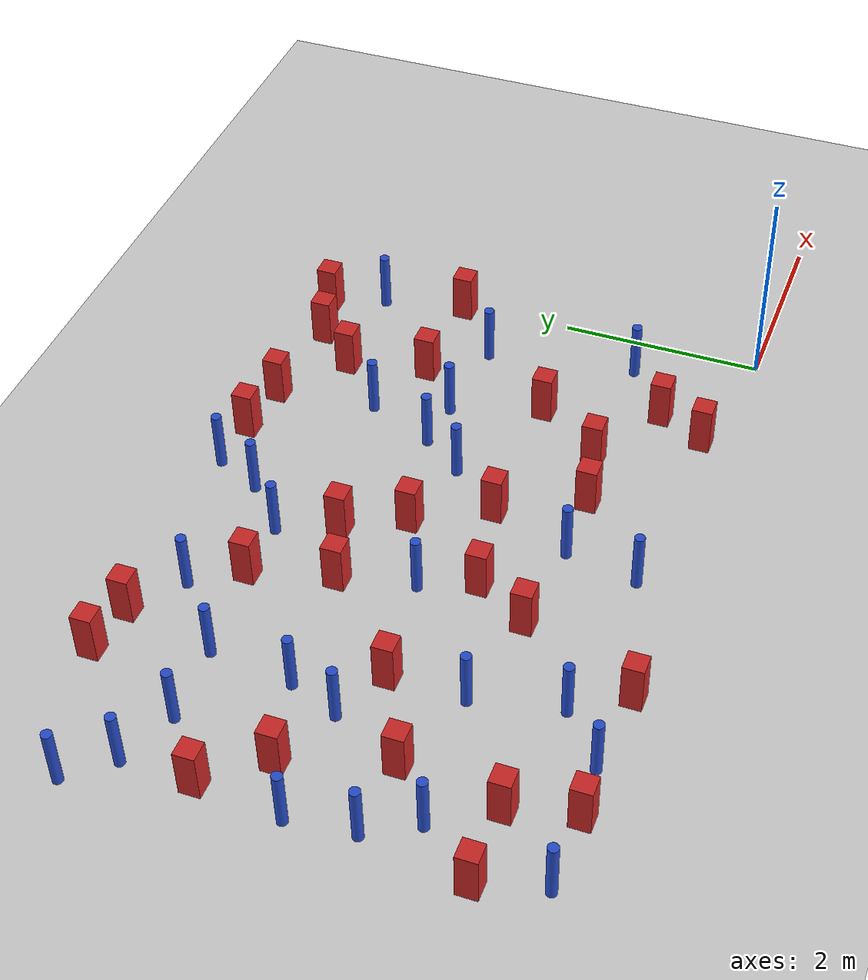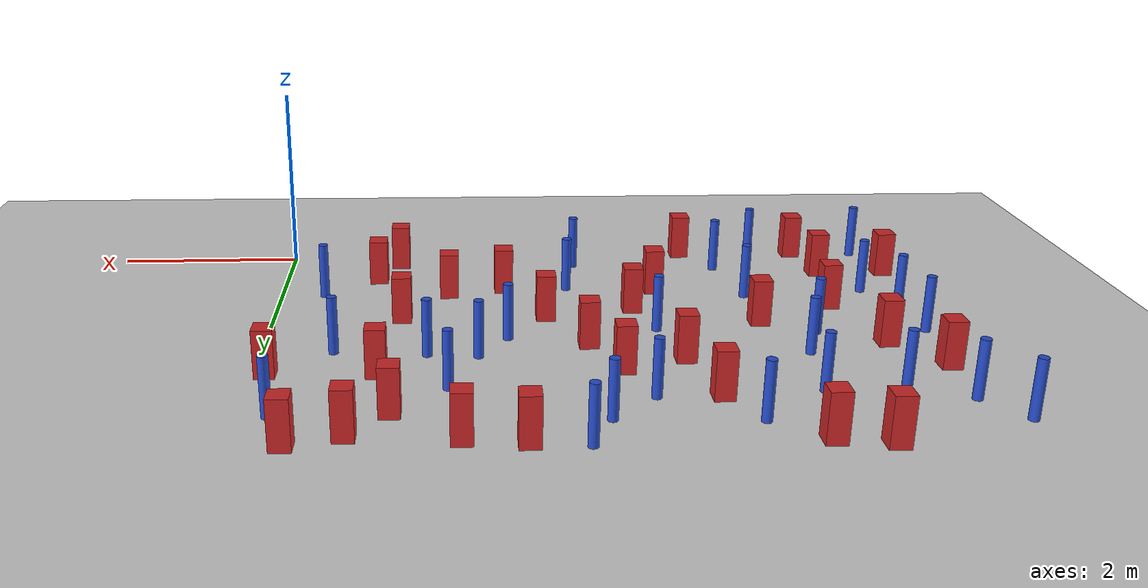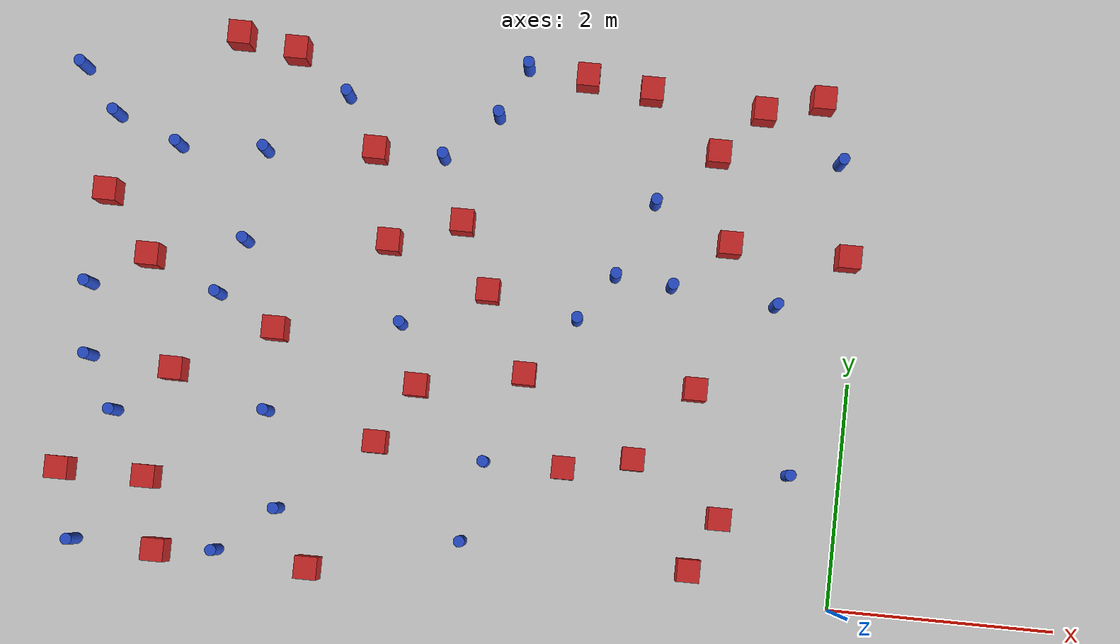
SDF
<sdf version="1.6">
 <world name="default">
  <model name="ground_plane">
   <static>1</static>
   <link name="link">
    <collision name="collision">
     <geometry><plane><normal>0 0 1</normal><size>100 100</size></plane></geometry>
     <surface><friction><ode><mu>100</mu><mu2>50</mu2></ode></friction></surface>
    </collision>
    <visual name="visual">
     <cast_shadows>0</cast_shadows>
     <geometry><plane><normal>0 0 1</normal><size>100 100</size></plane></geometry>
     <material>
      <ambient>1.0 1.0 1.0 1.0</ambient>
      <diffuse>0.8 0.8 0.8 1.0</diffuse>
      <specular>0.01 0.01 0.01 1.000000</specular>
     </material>
    </visual>
   </link>
  </model>
  <model name="square_post_obstacle5">
   <static>true</static>
   <pose>-6.06662300361 0.604514829962 -6.11067671241e-07 -5.50515727128e-06 -8.79689657224e-07 2.37013304536e-05</pose>
   <link name="link">
    <pose>0 0 0.25 0 -0 0</pose>
    <inertial>
     <mass>100</mass>
     <inertia>
      <ixx>0.166667</ixx>
      <ixy>0</ixy>
      <ixz>0</ixz>
      <iyy>0.166667</iyy>
      <iyz>0</iyz>
      <izz>0.166667</izz>
     </inertia>
    </inertial>
    <collision name="collision"><geometry><box><size>.2 .2 .5</size></box></geometry></collision>
    <visual name="visual">
     <geometry><box><size>.2 .2 .5</size></box></geometry>
     <material>
      <script><name>Gazebo/Red</name><uri>file://media/materials/scripts/gazebo.material</uri></script>
     </material>
    </visual>
   </link>
  </model>
  <model name="square_post_obstacle10">
   <static>true</static>
   <pose>-1.35094826481 1.81705522955 -6.11067671241e-07 -5.50515727128e-06 -8.79689657224e-07 2.37013304536e-05</pose>
   <link name="link">
    <pose>0 0 0.25 0 -0 0</pose>
    <inertial>
     <mass>100</mass>
     <inertia>
      <ixx>0.166667</ixx>
      <ixy>0</ixy>
      <ixz>0</ixz>
      <iyy>0.166667</iyy>
      <iyz>0</iyz>
      <izz>0.166667</izz>
     </inertia>
    </inertial>
    <collision name="collision"><geometry><box><size>.2 .2 .5</size></box></geometry></collision>
    <visual name="visual">
     <geometry><box><size>.2 .2 .5</size></box></geometry>
     <material>
      <script><name>Gazebo/Red</name><uri>file://media/materials/scripts/gazebo.material</uri></script>
     </material>
    </visual>
   </link>
  </model>
  <model name="square_post_obstacle20">
   <static>true</static>
   <pose>-0.461503948646 4.46319165194 -6.11067671241e-07 -5.50515727128e-06 -8.79689657224e-07 2.37013304536e-05</pose>
   <link name="link">
    <pose>0 0 0.25 0 -0 0</pose>
    <inertial>
     <mass>100</mass>
     <inertia>
      <ixx>0.166667</ixx>
      <ixy>0</ixy>
      <ixz>0</ixz>
      <iyy>0.166667</iyy>
      <iyz>0</iyz>
      <izz>0.166667</izz>
     </inertia>
    </inertial>
    <collision name="collision"><geometry><box><size>.2 .2 .5</size></box></geometry></collision>
    <visual name="visual">
     <geometry><box><size>.2 .2 .5</size></box></geometry>
     <material>
      <script><name>Gazebo/Red</name><uri>file://media/materials/scripts/gazebo.material</uri></script>
     </material>
    </visual>
   </link>
  </model>
  <model name="pole_obstacle14">
   <static>true</static>
   <pose>-6.65440008186 0.000161308376576 -9.47619616065e-06 5.49618799737e-07 2.36310414074e-07 -1.55090534794e-07</pose>
   <link name="link">
    <pose>0 0 0.3 0 -0 0</pose>
    <inertial>
     <mass>1</mass>
     <inertia><ixx>0.145833</ixx><ixy>0</ixy><ixz>0</ixz><iyy>0.145833</iyy><iyz>0</iyz><izz>0.125</izz></inertia>
    </inertial>
    <collision name="collision">
     <geometry><cylinder><radius>0.05</radius><length>.6</length></cylinder></geometry>
    </collision>
    <visual name="visual">
     <geometry><cylinder><radius>0.05</radius><length>.6</length></cylinder></geometry>
     <material>
      <script><name>Gazebo/Blue</name><uri>file://media/materials/scripts/gazebo.material</uri></script>
     </material>
    </visual>
   </link>
  </model>
  <model name="pole_obstacle15">
   <static>true</static>
   <pose>-3.74380300782 3.64948298879 -9.47619616065e-06 5.49618799737e-07 2.36310414051e-07 -1.55090534807e-07</pose>
   <link name="link">
    <pose>0 0 0.3 0 -0 0</pose>
    <inertial>
     <mass>1</mass>
     <inertia><ixx>0.145833</ixx><ixy>0</ixy><ixz>0</ixz><iyy>0.145833</iyy><iyz>0</iyz><izz>0.125</izz></inertia>
    </inertial>
    <collision name="collision">
     <geometry><cylinder><radius>0.05</radius><length>.6</length></cylinder></geometry>
    </collision>
    <visual name="visual">
     <geometry><cylinder><radius>0.05</radius><length>.6</length></cylinder></geometry>
     <material>
      <script><name>Gazebo/Blue</name><uri>file://media/materials/scripts/gazebo.material</uri></script>
     </material>
    </visual>
   </link>
  </model>
  <model name="square_post_obstacle24">
   <static>true</static>
   <pose>-5.92101096447 -0.0235850594535 -6.11067671241e-07 -5.50515727128e-06 -8.79689657224e-07 2.37013304536e-05</pose>
   <link name="link">
    <pose>0 0 0.25 0 -0 0</pose>
    <inertial>
     <mass>100</mass>
     <inertia>
      <ixx>0.166667</ixx>
      <ixy>0</ixy>
      <ixz>0</ixz>
      <iyy>0.166667</iyy>
      <iyz>0</iyz>
      <izz>0.166667</izz>
     </inertia>
    </inertial>
    <collision name="collision"><geometry><box><size>.2 .2 .5</size></box></geometry></collision>
    <visual name="visual">
     <geometry><box><size>.2 .2 .5</size></box></geometry>
     <material>
      <script><name>Gazebo/Red</name><uri>file://media/materials/scripts/gazebo.material</uri></script>
     </material>
    </visual>
   </link>
  </model>
  <model name="square_post_obstacle32">
   <static>true</static>
   <pose>-4.0955352928 1.09603956919 -6.11067671241e-07 -5.50515727128e-06 -8.79689657224e-07 2.37013304536e-05</pose>
   <link name="link">
    <pose>0 0 0.25 0 -0 0</pose>
    <inertial>
     <mass>100</mass>
     <inertia>
      <ixx>0.166667</ixx>
      <ixy>0</ixy>
      <ixz>0</ixz>
      <iyy>0.166667</iyy>
      <iyz>0</iyz>
      <izz>0.166667</izz>
     </inertia>
    </inertial>
    <collision name="collision"><geometry><box><size>.2 .2 .5</size></box></geometry></collision>
    <visual name="visual">
     <geometry><box><size>.2 .2 .5</size></box></geometry>
     <material>
      <script><name>Gazebo/Red</name><uri>file://media/materials/scripts/gazebo.material</uri></script>
     </material>
    </visual>
   </link>
  </model>
  <model name="pole_obstacle40">
   <static>true</static>
   <pose>-6.07600531907 3.53764182708 -9.47619616065e-06 5.49618799738e-07 2.36310414051e-07 -1.55090534805e-07</pose>
   <link name="link">
    <pose>0 0 0.3 0 -0 0</pose>
    <inertial>
     <mass>1</mass>
     <inertia><ixx>0.145833</ixx><ixy>0</ixy><ixz>0</ixz><iyy>0.145833</iyy><iyz>0</iyz><izz>0.125</izz></inertia>
    </inertial>
    <collision name="collision">
     <geometry><cylinder><radius>0.05</radius><length>.6</length></cylinder></geometry>
    </collision>
    <visual name="visual">
     <geometry><cylinder><radius>0.05</radius><length>.6</length></cylinder></geometry>
     <material>
      <script><name>Gazebo/Blue</name><uri>file://media/materials/scripts/gazebo.material</uri></script>
     </material>
    </visual>
   </link>
  </model>
  <model name="square_post_obstacle46">
   <static>true</static>
   <pose>-2.43889135925 1.02437017474 -6.11067671241e-07 -5.50515727128e-06 -8.79689657224e-07 2.37013304536e-05</pose>
   <link name="link">
    <pose>0 0 0.25 0 -0 0</pose>
    <inertial>
     <mass>100</mass>
     <inertia>
      <ixx>0.166667</ixx>
      <ixy>0</ixy>
      <ixz>0</ixz>
      <iyy>0.166667</iyy>
      <iyz>0</iyz>
      <izz>0.166667</izz>
     </inertia>
    </inertial>
    <collision name="collision"><geometry><box><size>.2 .2 .5</size></box></geometry></collision>
    <visual name="visual">
     <geometry><box><size>.2 .2 .5</size></box></geometry>
     <material>
      <script><name>Gazebo/Red</name><uri>file://media/materials/scripts/gazebo.material</uri></script>
     </material>
    </visual>
   </link>
  </model>
  <model name="pole_obstacle53">
   <static>true</static>
   <pose>-5.40208501766 0.0239567719036 -9.47619616065e-06 5.49618799737e-07 2.36310414077e-07 -1.55090534792e-07</pose>
   <link name="link">
    <pose>0 0 0.3 0 -0 0</pose>
    <inertial>
     <mass>1</mass>
     <inertia><ixx>0.145833</ixx><ixy>0</ixy><ixz>0</ixz><iyy>0.145833</iyy><iyz>0</iyz><izz>0.125</izz></inertia>
    </inertial>
    <collision name="collision">
     <geometry><cylinder><radius>0.05</radius><length>.6</length></cylinder></geometry>
    </collision>
    <visual name="visual">
     <geometry><cylinder><radius>0.05</radius><length>.6</length></cylinder></geometry>
     <material>
      <script><name>Gazebo/Blue</name><uri>file://media/materials/scripts/gazebo.material</uri></script>
     </material>
    </visual>
   </link>
  </model>
  <model name="square_post_obstacle58">
   <static>true</static>
   <pose>-1.16435199331 3.11640823403 -6.11067671241e-07 -5.50515727128e-06 -8.79689657224e-07 2.37013304536e-05</pose>
   <link name="link">
    <pose>0 0 0.25 0 -0 0</pose>
    <inertial>
     <mass>100</mass>
     <inertia>
      <ixx>0.166667</ixx>
      <ixy>0</ixy>
      <ixz>0</ixz>
      <iyy>0.166667</iyy>
      <iyz>0</iyz>
      <izz>0.166667</izz>
     </inertia>
    </inertial>
    <collision name="collision"><geometry><box><size>.2 .2 .5</size></box></geometry></collision>
    <visual name="visual">
     <geometry><box><size>.2 .2 .5</size></box></geometry>
     <material>
      <script><name>Gazebo/Red</name><uri>file://media/materials/scripts/gazebo.material</uri></script>
     </material>
    </visual>
   </link>
  </model>
  <model name="pole_obstacle61">
   <static>true</static>
   <pose>-0.470214494111 1.14553259301 -9.47619616065e-06 5.49618799738e-07 2.36310414059e-07 -1.55090534802e-07</pose>
   <link name="link">
    <pose>0 0 0.3 0 -0 0</pose>
    <inertial>
     <mass>1</mass>
     <inertia><ixx>0.145833</ixx><ixy>0</ixy><ixz>0</ixz><iyy>0.145833</iyy><iyz>0</iyz><izz>0.125</izz></inertia>
    </inertial>
    <collision name="collision">
     <geometry><cylinder><radius>0.05</radius><length>.6</length></cylinder></geometry>
    </collision>
    <visual name="visual">
     <geometry><cylinder><radius>0.05</radius><length>.6</length></cylinder></geometry>
     <material>
      <script><name>Gazebo/Blue</name><uri>file://media/materials/scripts/gazebo.material</uri></script>
     </material>
    </visual>
   </link>
  </model>
  <model name="pole_obstacle62">
   <static>true</static>
   <pose>-5.60081594355 2.26442288096 -9.47619616065e-06 5.49618799738e-07 2.36310414051e-07 -1.55090534805e-07</pose>
   <link name="link">
    <pose>0 0 0.3 0 -0 0</pose>
    <inertial>
     <mass>1</mass>
     <inertia><ixx>0.145833</ixx><ixy>0</ixy><ixz>0</ixz><iyy>0.145833</iyy><iyz>0</iyz><izz>0.125</izz></inertia>
    </inertial>
    <collision name="collision">
     <geometry><cylinder><radius>0.05</radius><length>.6</length></cylinder></geometry>
    </collision>
    <visual name="visual">
     <geometry><cylinder><radius>0.05</radius><length>.6</length></cylinder></geometry>
     <material>
      <script><name>Gazebo/Blue</name><uri>file://media/materials/scripts/gazebo.material</uri></script>
     </material>
    </visual>
   </link>
  </model>
  <model name="pole_obstacle63">
   <static>true</static>
   <pose>-1.63534114323 2.70357847864 -9.47619616065e-06 5.49618799737e-07 2.36310414062e-07 -1.55090534798e-07</pose>
   <link name="link">
    <pose>0 0 0.3 0 -0 0</pose>
    <inertial>
     <mass>1</mass>
     <inertia><ixx>0.145833</ixx><ixy>0</ixy><ixz>0</ixz><iyy>0.145833</iyy><iyz>0</iyz><izz>0.125</izz></inertia>
    </inertial>
    <collision name="collision">
     <geometry><cylinder><radius>0.05</radius><length>.6</length></cylinder></geometry>
    </collision>
    <visual name="visual">
     <geometry><cylinder><radius>0.05</radius><length>.6</length></cylinder></geometry>
     <material>
      <script><name>Gazebo/Blue</name><uri>file://media/materials/scripts/gazebo.material</uri></script>
     </material>
    </visual>
   </link>
  </model>
  <model name="square_post_obstacle67">
   <static>true</static>
   <pose>-2.54320084545 4.46881187604 -6.11067671241e-07 -5.50515727128e-06 -8.79689657224e-07 2.37013304536e-05</pose>
   <link name="link">
    <pose>0 0 0.25 0 -0 0</pose>
    <inertial>
     <mass>100</mass>
     <inertia>
      <ixx>0.166667</ixx>
      <ixy>0</ixy>
      <ixz>0</ixz>
      <iyy>0.166667</iyy>
      <iyz>0</iyz>
      <izz>0.166667</izz>
     </inertia>
    </inertial>
    <collision name="collision"><geometry><box><size>.2 .2 .5</size></box></geometry></collision>
    <visual name="visual">
     <geometry><box><size>.2 .2 .5</size></box></geometry>
     <material>
      <script><name>Gazebo/Red</name><uri>file://media/materials/scripts/gazebo.material</uri></script>
     </material>
    </visual>
   </link>
  </model>
  <model name="square_post_obstacle75">
   <static>true</static>
   <pose>-5.6244048949 4.5495234167 -6.11067671241e-07 -5.50515727128e-06 -8.79689657224e-07 2.37013304536e-05</pose>
   <link name="link">
    <pose>0 0 0.25 0 -0 0</pose>
    <inertial>
     <mass>100</mass>
     <inertia>
      <ixx>0.166667</ixx>
      <ixy>0</ixy>
      <ixz>0</ixz>
      <iyy>0.166667</iyy>
      <iyz>0</iyz>
      <izz>0.166667</izz>
     </inertia>
    </inertial>
    <collision name="collision"><geometry><box><size>.2 .2 .5</size></box></geometry></collision>
    <visual name="visual">
     <geometry><box><size>.2 .2 .5</size></box></geometry>
     <material>
      <script><name>Gazebo/Red</name><uri>file://media/materials/scripts/gazebo.material</uri></script>
     </material>
    </visual>
   </link>
  </model>
  <model name="pole_obstacle69">
   <static>true</static>
   <pose>-0.256189682498 3.92985698328 -9.47619616065e-06 5.49618799738e-07 2.36310414071e-07 -1.55090534795e-07</pose>
   <link name="link">
    <pose>0 0 0.3 0 -0 0</pose>
    <inertial>
     <mass>1</mass>
     <inertia><ixx>0.145833</ixx><ixy>0</ixy><ixz>0</ixz><iyy>0.145833</iyy><iyz>0</iyz><izz>0.125</izz></inertia>
    </inertial>
    <collision name="collision">
     <geometry><cylinder><radius>0.05</radius><length>.6</length></cylinder></geometry>
    </collision>
    <visual name="visual">
     <geometry><cylinder><radius>0.05</radius><length>.6</length></cylinder></geometry>
     <material>
      <script><name>Gazebo/Blue</name><uri>file://media/materials/scripts/gazebo.material</uri></script>
     </material>
    </visual>
   </link>
  </model>
  <model name="pole_obstacle71">
   <static>true</static>
   <pose>-6.97457156071 4.15332537282 -9.47619616065e-06 5.49618799737e-07 2.36310414037e-07 -1.55090534814e-07</pose>
   <link name="link">
    <pose>0 0 0.3 0 -0 0</pose>
    <inertial>
     <mass>1</mass>
     <inertia><ixx>0.145833</ixx><ixy>0</ixy><ixz>0</ixz><iyy>0.145833</iyy><iyz>0</iyz><izz>0.125</izz></inertia>
    </inertial>
    <collision name="collision">
     <geometry><cylinder><radius>0.05</radius><length>.6</length></cylinder></geometry>
    </collision>
    <visual name="visual">
     <geometry><cylinder><radius>0.05</radius><length>.6</length></cylinder></geometry>
     <material>
      <script><name>Gazebo/Blue</name><uri>file://media/materials/scripts/gazebo.material</uri></script>
     </material>
    </visual>
   </link>
  </model>
  <model name="pole_obstacle84">
   <static>true</static>
   <pose>-3.27161388514 0.303217687506 -9.47619616065e-06 5.49618799737e-07 2.36310414038e-07 -1.55090534814e-07</pose>
   <link name="link">
    <pose>0 0 0.3 0 -0 0</pose>
    <inertial>
     <mass>1</mass>
     <inertia><ixx>0.145833</ixx><ixy>0</ixy><ixz>0</ixz><iyy>0.145833</iyy><iyz>0</iyz><izz>0.125</izz></inertia>
    </inertial>
    <collision name="collision">
     <geometry><cylinder><radius>0.05</radius><length>.6</length></cylinder></geometry>
    </collision>
    <visual name="visual">
     <geometry><cylinder><radius>0.05</radius><length>.6</length></cylinder></geometry>
     <material>
      <script><name>Gazebo/Blue</name><uri>file://media/materials/scripts/gazebo.material</uri></script>
     </material>
    </visual>
   </link>
  </model>
  <model name="square_post_obstacle81">
   <static>true</static>
   <pose>-6.65757825137 3.06858566015 -6.11067671241e-07 -5.50515727128e-06 -8.79689657224e-07 2.37013304536e-05</pose>
   <link name="link">
    <pose>0 0 0.25 0 -0 0</pose>
    <inertial>
     <mass>100</mass>
     <inertia>
      <ixx>0.166667</ixx>
      <ixy>0</ixy>
      <ixz>0</ixz>
      <iyy>0.166667</iyy>
      <iyz>0</iyz>
      <izz>0.166667</izz>
     </inertia>
    </inertial>
    <collision name="collision"><geometry><box><size>.2 .2 .5</size></box></geometry></collision>
    <visual name="visual">
     <geometry><box><size>.2 .2 .5</size></box></geometry>
     <material>
      <script><name>Gazebo/Red</name><uri>file://media/materials/scripts/gazebo.material</uri></script>
     </material>
    </visual>
   </link>
  </model>
  <model name="pole_obstacle89">
   <static>true</static>
   <pose>-4.90211836846 0.436472874285 -9.47619616065e-06 5.49618799737e-07 2.36310414057e-07 -1.55090534802e-07</pose>
   <link name="link">
    <pose>0 0 0.3 0 -0 0</pose>
    <inertial>
     <mass>1</mass>
     <inertia><ixx>0.145833</ixx><ixy>0</ixy><ixz>0</ixz><iyy>0.145833</iyy><iyz>0</iyz><izz>0.125</izz></inertia>
    </inertial>
    <collision name="collision">
     <geometry><cylinder><radius>0.05</radius><length>.6</length></cylinder></geometry>
    </collision>
    <visual name="visual">
     <geometry><cylinder><radius>0.05</radius><length>.6</length></cylinder></geometry>
     <material>
      <script><name>Gazebo/Blue</name><uri>file://media/materials/scripts/gazebo.material</uri></script>
     </material>
    </visual>
   </link>
  </model>
  <model name="pole_obstacle91">
   <static>true</static>
   <pose>-5.07825040138 1.27768494806 -9.47619616065e-06 5.49618799738e-07 2.36310414071e-07 -1.55090534796e-07</pose>
   <link name="link">
    <pose>0 0 0.3 0 -0 0</pose>
    <inertial>
     <mass>1</mass>
     <inertia><ixx>0.145833</ixx><ixy>0</ixy><ixz>0</ixz><iyy>0.145833</iyy><iyz>0</iyz><izz>0.125</izz></inertia>
    </inertial>
    <collision name="collision">
     <geometry><cylinder><radius>0.05</radius><length>.6</length></cylinder></geometry>
    </collision>
    <visual name="visual">
     <geometry><cylinder><radius>0.05</radius><length>.6</length></cylinder></geometry>
     <material>
      <script><name>Gazebo/Blue</name><uri>file://media/materials/scripts/gazebo.material</uri></script>
     </material>
    </visual>
   </link>
  </model>
  <model name="pole_obstacle92">
   <static>true</static>
   <pose>-0.711903887232 2.61865354245 -9.47619616065e-06 5.49618799737e-07 2.36310414066e-07 -1.55090534797e-07</pose>
   <link name="link">
    <pose>0 0 0.3 0 -0 0</pose>
    <inertial>
     <mass>1</mass>
     <inertia><ixx>0.145833</ixx><ixy>0</ixy><ixz>0</ixz><iyy>0.145833</iyy><iyz>0</iyz><izz>0.125</izz></inertia>
    </inertial>
    <collision name="collision">
     <geometry><cylinder><radius>0.05</radius><length>.6</length></cylinder></geometry>
    </collision>
    <visual name="visual">
     <geometry><cylinder><radius>0.05</radius><length>.6</length></cylinder></geometry>
     <material>
      <script><name>Gazebo/Blue</name><uri>file://media/materials/scripts/gazebo.material</uri></script>
     </material>
    </visual>
   </link>
  </model>
  <model name="pole_obstacle96">
   <static>true</static>
   <pose>-5.31027802417 3.56559005017 -9.47619616065e-06 5.49618799738e-07 2.36310414051e-07 -1.55090534805e-07</pose>
   <link name="link">
    <pose>0 0 0.3 0 -0 0</pose>
    <inertial>
     <mass>1</mass>
     <inertia><ixx>0.145833</ixx><ixy>0</ixy><ixz>0</ixz><iyy>0.145833</iyy><iyz>0</iyz><izz>0.125</izz></inertia>
    </inertial>
    <collision name="collision">
     <geometry><cylinder><radius>0.05</radius><length>.6</length></cylinder></geometry>
    </collision>
    <visual name="visual">
     <geometry><cylinder><radius>0.05</radius><length>.6</length></cylinder></geometry>
     <material>
      <script><name>Gazebo/Blue</name><uri>file://media/materials/scripts/gazebo.material</uri></script>
     </material>
    </visual>
   </link>
  </model>
  <model name="pole_obstacle102">
   <static>true</static>
   <pose>-4.63350109201 4.11694724876 -9.47619616065e-06 5.49618799737e-07 2.36310414037e-07 -1.55090534814e-07</pose>
   <link name="link">
    <pose>0 0 0.3 0 -0 0</pose>
    <inertial>
     <mass>1</mass>
     <inertia><ixx>0.145833</ixx><ixy>0</ixy><ixz>0</ixz><iyy>0.145833</iyy><iyz>0</iyz><izz>0.125</izz></inertia>
    </inertial>
    <collision name="collision">
     <geometry><cylinder><radius>0.05</radius><length>.6</length></cylinder></geometry>
    </collision>
    <visual name="visual">
     <geometry><cylinder><radius>0.05</radius><length>.6</length></cylinder></geometry>
     <material>
      <script><name>Gazebo/Blue</name><uri>file://media/materials/scripts/gazebo.material</uri></script>
     </material>
    </visual>
   </link>
  </model>
  <model name="pole_obstacle107">
   <static>true</static>
   <pose>-6.64401736794 3.75747928644 -9.47619616065e-06 5.49618799738e-07 2.36310414051e-07 -1.55090534805e-07</pose>
   <link name="link">
    <pose>0 0 0.3 0 -0 0</pose>
    <inertial>
     <mass>1</mass>
     <inertia><ixx>0.145833</ixx><ixy>0</ixy><ixz>0</ixz><iyy>0.145833</iyy><iyz>0</iyz><izz>0.125</izz></inertia>
    </inertial>
    <collision name="collision">
     <geometry><cylinder><radius>0.05</radius><length>.6</length></cylinder></geometry>
    </collision>
    <visual name="visual">
     <geometry><cylinder><radius>0.05</radius><length>.6</length></cylinder></geometry>
     <material>
      <script><name>Gazebo/Blue</name><uri>file://media/materials/scripts/gazebo.material</uri></script>
     </material>
    </visual>
   </link>
  </model>
  <model name="square_post_obstacle95">
   <static>true</static>
   <pose>-3.52306298681 3.08888562368 -6.11067671241e-07 -5.50515727128e-06 -8.79689657224e-07 2.37013304536e-05</pose>
   <link name="link">
    <pose>0 0 0.25 0 -0 0</pose>
    <inertial>
     <mass>100</mass>
     <inertia>
      <ixx>0.166667</ixx>
      <ixy>0</ixy>
      <ixz>0</ixz>
      <iyy>0.166667</iyy>
      <iyz>0</iyz>
      <izz>0.166667</izz>
     </inertia>
    </inertial>
    <collision name="collision"><geometry><box><size>.2 .2 .5</size></box></geometry></collision>
    <visual name="visual">
     <geometry><box><size>.2 .2 .5</size></box></geometry>
     <material>
      <script><name>Gazebo/Red</name><uri>file://media/materials/scripts/gazebo.material</uri></script>
     </material>
    </visual>
   </link>
  </model>
  <model name="square_post_obstacle103">
   <static>true</static>
   <pose>-6.23265415805 2.53858121214 -6.11067671241e-07 -5.50515727128e-06 -8.79689657224e-07 2.37013304536e-05</pose>
   <link name="link">
    <pose>0 0 0.25 0 -0 0</pose>
    <inertial>
     <mass>100</mass>
     <inertia>
      <ixx>0.166667</ixx>
      <ixy>0</ixy>
      <ixz>0</ixz>
      <iyy>0.166667</iyy>
      <iyz>0</iyz>
      <izz>0.166667</izz>
     </inertia>
    </inertial>
    <collision name="collision"><geometry><box><size>.2 .2 .5</size></box></geometry></collision>
    <visual name="visual">
     <geometry><box><size>.2 .2 .5</size></box></geometry>
     <material>
      <script><name>Gazebo/Red</name><uri>file://media/materials/scripts/gazebo.material</uri></script>
     </material>
    </visual>
   </link>
  </model>
  <model name="pole_obstacle119">
   <static>true</static>
   <pose>-6.41022092119 1.1568910401 -9.47619616065e-06 5.49618799738e-07 2.36310414071e-07 -1.55090534796e-07</pose>
   <link name="link">
    <pose>0 0 0.3 0 -0 0</pose>
    <inertial>
     <mass>1</mass>
     <inertia><ixx>0.145833</ixx><ixy>0</ixy><ixz>0</ixz><iyy>0.145833</iyy><iyz>0</iyz><izz>0.125</izz></inertia>
    </inertial>
    <collision name="collision">
     <geometry><cylinder><radius>0.05</radius><length>.6</length></cylinder></geometry>
    </collision>
    <visual name="visual">
     <geometry><cylinder><radius>0.05</radius><length>.6</length></cylinder></geometry>
     <material>
      <script><name>Gazebo/Blue</name><uri>file://media/materials/scripts/gazebo.material</uri></script>
     </material>
    </visual>
   </link>
  </model>
  <model name="pole_obstacle120">
   <static>true</static>
   <pose>-5.40750974245 2.75024418857 -9.47619616065e-06 5.49618799738e-07 2.36310414051e-07 -1.55090534805e-07</pose>
   <link name="link">
    <pose>0 0 0.3 0 -0 0</pose>
    <inertial>
     <mass>1</mass>
     <inertia><ixx>0.145833</ixx><ixy>0</ixy><ixz>0</ixz><iyy>0.145833</iyy><iyz>0</iyz><izz>0.125</izz></inertia>
    </inertial>
    <collision name="collision">
     <geometry><cylinder><radius>0.05</radius><length>.6</length></cylinder></geometry>
    </collision>
    <visual name="visual">
     <geometry><cylinder><radius>0.05</radius><length>.6</length></cylinder></geometry>
     <material>
      <script><name>Gazebo/Blue</name><uri>file://media/materials/scripts/gazebo.material</uri></script>
     </material>
    </visual>
   </link>
  </model>
  <model name="square_post_obstacle112">
   <static>true</static>
   <pose>-6.8253036748 0.608258718338 -6.11067671241e-07 -5.50515727128e-06 -8.79689657224e-07 2.37013304536e-05</pose>
   <link name="link">
    <pose>0 0 0.25 0 -0 0</pose>
    <inertial>
     <mass>100</mass>
     <inertia>
      <ixx>0.166667</ixx>
      <ixy>0</ixy>
      <ixz>0</ixz>
      <iyy>0.166667</iyy>
      <iyz>0</iyz>
      <izz>0.166667</izz>
     </inertia>
    </inertial>
    <collision name="collision"><geometry><box><size>.2 .2 .5</size></box></geometry></collision>
    <visual name="visual">
     <geometry><box><size>.2 .2 .5</size></box></geometry>
     <material>
      <script><name>Gazebo/Red</name><uri>file://media/materials/scripts/gazebo.material</uri></script>
     </material>
    </visual>
   </link>
  </model>
  <model name="square_post_obstacle113">
   <static>true</static>
   <pose>-3.24066936965 2.50563709609 -6.11067671241e-07 -5.50515727128e-06 -8.79689657224e-07 2.37013304536e-05</pose>
   <link name="link">
    <pose>0 0 0.25 0 -0 0</pose>
    <inertial>
     <mass>100</mass>
     <inertia>
      <ixx>0.166667</ixx>
      <ixy>0</ixy>
      <ixz>0</ixz>
      <iyy>0.166667</iyy>
      <iyz>0</iyz>
      <izz>0.166667</izz>
     </inertia>
    </inertial>
    <collision name="collision"><geometry><box><size>.2 .2 .5</size></box></geometry></collision>
    <visual name="visual">
     <geometry><box><size>.2 .2 .5</size></box></geometry>
     <material>
      <script><name>Gazebo/Red</name><uri>file://media/materials/scripts/gazebo.material</uri></script>
     </material>
    </visual>
   </link>
  </model>
  <model name="pole_obstacle129">
   <static>true</static>
   <pose>-3.29248522523 4.05968723705 -9.47619616065e-06 5.49618799738e-07 2.3631041406e-07 -1.55090534801e-07</pose>
   <link name="link">
    <pose>0 0 0.3 0 -0 0</pose>
    <inertial>
     <mass>1</mass>
     <inertia><ixx>0.145833</ixx><ixy>0</ixy><ixz>0</ixz><iyy>0.145833</iyy><iyz>0</iyz><izz>0.125</izz></inertia>
    </inertial>
    <collision name="collision">
     <geometry><cylinder><radius>0.05</radius><length>.6</length></cylinder></geometry>
    </collision>
    <visual name="visual">
     <geometry><cylinder><radius>0.05</radius><length>.6</length></cylinder></geometry>
     <material>
      <script><name>Gazebo/Blue</name><uri>file://media/materials/scripts/gazebo.material</uri></script>
     </material>
    </visual>
   </link>
  </model>
  <model name="pole_obstacle134">
   <static>true</static>
   <pose>-6.73943353121 2.24915200186 -9.47619616065e-06 5.49618799738e-07 2.36310414051e-07 -1.55090534805e-07</pose>
   <link name="link">
    <pose>0 0 0.3 0 -0 0</pose>
    <inertial>
     <mass>1</mass>
     <inertia><ixx>0.145833</ixx><ixy>0</ixy><ixz>0</ixz><iyy>0.145833</iyy><iyz>0</iyz><izz>0.125</izz></inertia>
    </inertial>
    <collision name="collision">
     <geometry><cylinder><radius>0.05</radius><length>.6</length></cylinder></geometry>
    </collision>
    <visual name="visual">
     <geometry><cylinder><radius>0.05</radius><length>.6</length></cylinder></geometry>
     <material>
      <script><name>Gazebo/Blue</name><uri>file://media/materials/scripts/gazebo.material</uri></script>
     </material>
    </visual>
   </link>
  </model>
  <model name="square_post_obstacle117">
   <static>true</static>
   <pose>-0.117500831688 3.09272566852 -6.11067671241e-07 -5.50515727128e-06 -8.79689657224e-07 2.37013304536e-05</pose>
   <link name="link">
    <pose>0 0 0.25 0 -0 0</pose>
    <inertial>
     <mass>100</mass>
     <inertia>
      <ixx>0.166667</ixx>
      <ixy>0</ixy>
      <ixz>0</ixz>
      <iyy>0.166667</iyy>
      <iyz>0</iyz>
      <izz>0.166667</izz>
     </inertia>
    </inertial>
    <collision name="collision"><geometry><box><size>.2 .2 .5</size></box></geometry></collision>
    <visual name="visual">
     <geometry><box><size>.2 .2 .5</size></box></geometry>
     <material>
      <script><name>Gazebo/Red</name><uri>file://media/materials/scripts/gazebo.material</uri></script>
     </material>
    </visual>
   </link>
  </model>
  <model name="pole_obstacle145">
   <static>true</static>
   <pose>-2.44083776871 2.33502547299 -9.47619616065e-06 5.49618799737e-07 2.36310414051e-07 -1.55090534807e-07</pose>
   <link name="link">
    <pose>0 0 0.3 0 -0 0</pose>
    <inertial>
     <mass>1</mass>
     <inertia><ixx>0.145833</ixx><ixy>0</ixy><ixz>0</ixz><iyy>0.145833</iyy><iyz>0</iyz><izz>0.125</izz></inertia>
    </inertial>
    <collision name="collision">
     <geometry><cylinder><radius>0.05</radius><length>.6</length></cylinder></geometry>
    </collision>
    <visual name="visual">
     <geometry><cylinder><radius>0.05</radius><length>.6</length></cylinder></geometry>
     <material>
      <script><name>Gazebo/Blue</name><uri>file://media/materials/scripts/gazebo.material</uri></script>
     </material>
    </visual>
   </link>
  </model>
  <model name="pole_obstacle146">
   <static>true</static>
   <pose>-3.97789909903 2.1516224594 -9.4761961606e-06 5.49618799729e-07 2.36310413998e-07 -1.55090534826e-07</pose>
   <link name="link">
    <pose>0 0 0.3 0 -0 0</pose>
    <inertial>
     <mass>1</mass>
     <inertia><ixx>0.145833</ixx><ixy>0</ixy><ixz>0</ixz><iyy>0.145833</iyy><iyz>0</iyz><izz>0.125</izz></inertia>
    </inertial>
    <collision name="collision">
     <geometry><cylinder><radius>0.05</radius><length>.6</length></cylinder></geometry>
    </collision>
    <visual name="visual">
     <geometry><cylinder><radius>0.05</radius><length>.6</length></cylinder></geometry>
     <material>
      <script><name>Gazebo/Blue</name><uri>file://media/materials/scripts/gazebo.material</uri></script>
     </material>
    </visual>
   </link>
  </model>
  <model name="square_post_obstacle137">
   <static>true</static>
   <pose>-4.14723294333 2.85941110891 -6.11067671241e-07 -5.50515727128e-06 -8.79689657224e-07 2.37013304536e-05</pose>
   <link name="link">
    <pose>0 0 0.25 0 -0 0</pose>
    <inertial>
     <mass>100</mass>
     <inertia>
      <ixx>0.166667</ixx>
      <ixy>0</ixy>
      <ixz>0</ixz>
      <iyy>0.166667</iyy>
      <iyz>0</iyz>
      <izz>0.166667</izz>
     </inertia>
    </inertial>
    <collision name="collision"><geometry><box><size>.2 .2 .5</size></box></geometry></collision>
    <visual name="visual">
     <geometry><box><size>.2 .2 .5</size></box></geometry>
     <material>
      <script><name>Gazebo/Red</name><uri>file://media/materials/scripts/gazebo.material</uri></script>
     </material>
    </visual>
   </link>
  </model>
  <model name="square_post_obstacle138">
   <static>true</static>
   <pose>-1.83932174591 1.1570585355 -6.11067671241e-07 -5.50515727128e-06 -8.79689657224e-07 2.37013304536e-05</pose>
   <link name="link">
    <pose>0 0 0.25 0 -0 0</pose>
    <inertial>
     <mass>100</mass>
     <inertia>
      <ixx>0.166667</ixx>
      <ixy>0</ixy>
      <ixz>0</ixz>
      <iyy>0.166667</iyy>
      <iyz>0</iyz>
      <izz>0.166667</izz>
     </inertia>
    </inertial>
    <collision name="collision"><geometry><box><size>.2 .2 .5</size></box></geometry></collision>
    <visual name="visual">
     <geometry><box><size>.2 .2 .5</size></box></geometry>
     <material>
      <script><name>Gazebo/Red</name><uri>file://media/materials/scripts/gazebo.material</uri></script>
     </material>
    </visual>
   </link>
  </model>
  <model name="square_post_obstacle151">
   <static>true</static>
   <pose>-2.85403839743 1.80877291196 -6.11067671241e-07 -5.50515727128e-06 -8.79689657224e-07 2.37013304536e-05</pose>
   <link name="link">
    <pose>0 0 0.25 0 -0 0</pose>
    <inertial>
     <mass>100</mass>
     <inertia>
      <ixx>0.166667</ixx>
      <ixy>0</ixy>
      <ixz>0</ixz>
      <iyy>0.166667</iyy>
      <iyz>0</iyz>
      <izz>0.166667</izz>
     </inertia>
    </inertial>
    <collision name="collision"><geometry><box><size>.2 .2 .5</size></box></geometry></collision>
    <visual name="visual">
     <geometry><box><size>.2 .2 .5</size></box></geometry>
     <material>
      <script><name>Gazebo/Red</name><uri>file://media/materials/scripts/gazebo.material</uri></script>
     </material>
    </visual>
   </link>
  </model>
  <model name="pole_obstacle159">
   <static>true</static>
   <pose>-1.84733556228 3.42588131605 -9.47619616065e-06 5.49618799737e-07 2.36310414062e-07 -1.55090534798e-07</pose>
   <link name="link">
    <pose>0 0 0.3 0 -0 0</pose>
    <inertial>
     <mass>1</mass>
     <inertia><ixx>0.145833</ixx><ixy>0</ixy><ixz>0</ixz><iyy>0.145833</iyy><iyz>0</iyz><izz>0.125</izz></inertia>
    </inertial>
    <collision name="collision">
     <geometry><cylinder><radius>0.05</radius><length>.6</length></cylinder></geometry>
    </collision>
    <visual name="visual">
     <geometry><cylinder><radius>0.05</radius><length>.6</length></cylinder></geometry>
     <material>
      <script><name>Gazebo/Blue</name><uri>file://media/materials/scripts/gazebo.material</uri></script>
     </material>
    </visual>
   </link>
  </model>
  <model name="square_post_obstacle160">
   <static>true</static>
   <pose>-1.26920704461 0.238419168667 -6.11067671241e-07 -5.50515727128e-06 -8.79689657224e-07 2.37013304536e-05</pose>
   <link name="link">
    <pose>0 0 0.25 0 -0 0</pose>
    <inertial>
     <mass>100</mass>
     <inertia>
      <ixx>0.166667</ixx>
      <ixy>0</ixy>
      <ixz>0</ixz>
      <iyy>0.166667</iyy>
      <iyz>0</iyz>
      <izz>0.166667</izz>
     </inertia>
    </inertial>
    <collision name="collision"><geometry><box><size>.2 .2 .5</size></box></geometry></collision>
    <visual name="visual">
     <geometry><box><size>.2 .2 .5</size></box></geometry>
     <material>
      <script><name>Gazebo/Red</name><uri>file://media/materials/scripts/gazebo.material</uri></script>
     </material>
    </visual>
   </link>
  </model>
  <model name="pole_obstacle175">
   <static>true</static>
   <pose>-3.13688468624 1.0136803722 -9.47619616065e-06 5.49618799737e-07 2.36310414032e-07 -1.55090534818e-07</pose>
   <link name="link">
    <pose>0 0 0.3 0 -0 0</pose>
    <inertial>
     <mass>1</mass>
     <inertia><ixx>0.145833</ixx><ixy>0</ixy><ixz>0</ixz><iyy>0.145833</iyy><iyz>0</iyz><izz>0.125</izz></inertia>
    </inertial>
    <collision name="collision">
     <geometry><cylinder><radius>0.05</radius><length>.6</length></cylinder></geometry>
    </collision>
    <visual name="visual">
     <geometry><cylinder><radius>0.05</radius><length>.6</length></cylinder></geometry>
     <material>
      <script><name>Gazebo/Blue</name><uri>file://media/materials/scripts/gazebo.material</uri></script>
     </material>
    </visual>
   </link>
  </model>
  <model name="square_post_obstacle165">
   <static>true</static>
   <pose>-5.11722875619 4.4647738061 -6.11067671241e-07 -5.50515727128e-06 -8.79689657224e-07 2.37013304536e-05</pose>
   <link name="link">
    <pose>0 0 0.25 0 -0 0</pose>
    <inertial>
     <mass>100</mass>
     <inertia>
      <ixx>0.166667</ixx>
      <ixy>0</ixy>
      <ixz>0</ixz>
      <iyy>0.166667</iyy>
      <iyz>0</iyz>
      <izz>0.166667</izz>
     </inertia>
    </inertial>
    <collision name="collision"><geometry><box><size>.2 .2 .5</size></box></geometry></collision>
    <visual name="visual">
     <geometry><box><size>.2 .2 .5</size></box></geometry>
     <material>
      <script><name>Gazebo/Red</name><uri>file://media/materials/scripts/gazebo.material</uri></script>
     </material>
    </visual>
   </link>
  </model>
  <model name="square_post_obstacle179">
   <static>true</static>
   <pose>-4.58123563399 -0.0537512189975 -6.11067671241e-07 -5.50515727128e-06 -8.79689657224e-07 2.37013304536e-05</pose>
   <link name="link">
    <pose>0 0 0.25 0 -0 0</pose>
    <inertial>
     <mass>100</mass>
     <inertia>
      <ixx>0.166667</ixx>
      <ixy>0</ixy>
      <ixz>0</ixz>
      <iyy>0.166667</iyy>
      <iyz>0</iyz>
      <izz>0.166667</izz>
     </inertia>
    </inertial>
    <collision name="collision"><geometry><box><size>.2 .2 .5</size></box></geometry></collision>
    <visual name="visual">
     <geometry><box><size>.2 .2 .5</size></box></geometry>
     <material>
      <script><name>Gazebo/Red</name><uri>file://media/materials/scripts/gazebo.material</uri></script>
     </material>
    </visual>
   </link>
  </model>
  <model name="square_post_obstacle187">
   <static>true</static>
   <pose>-5.92451357082 1.56616423577 -6.11067671241e-07 -5.50515727128e-06 -8.79689657224e-07 2.37013304536e-05</pose>
   <link name="link">
    <pose>0 0 0.25 0 -0 0</pose>
    <inertial>
     <mass>100</mass>
     <inertia>
      <ixx>0.166667</ixx>
      <ixy>0</ixy>
      <ixz>0</ixz>
      <iyy>0.166667</iyy>
      <iyz>0</iyz>
      <izz>0.166667</izz>
     </inertia>
    </inertial>
    <collision name="collision"><geometry><box><size>.2 .2 .5</size></box></geometry></collision>
    <visual name="visual">
     <geometry><box><size>.2 .2 .5</size></box></geometry>
     <material>
      <script><name>Gazebo/Red</name><uri>file://media/materials/scripts/gazebo.material</uri></script>
     </material>
    </visual>
   </link>
  </model>
  <model name="square_post_obstacle195">
   <static>true</static>
   <pose>-3.7879958862 1.62382633896 -6.11067671241e-07 -5.50515727128e-06 -8.79689657224e-07 2.37013304536e-05</pose>
   <link name="link">
    <pose>0 0 0.25 0 -0 0</pose>
    <inertial>
     <mass>100</mass>
     <inertia>
      <ixx>0.166667</ixx>
      <ixy>0</ixy>
      <ixz>0</ixz>
      <iyy>0.166667</iyy>
      <iyz>0</iyz>
      <izz>0.166667</izz>
     </inertia>
    </inertial>
    <collision name="collision"><geometry><box><size>.2 .2 .5</size></box></geometry></collision>
    <visual name="visual">
     <geometry><box><size>.2 .2 .5</size></box></geometry>
     <material>
      <script><name>Gazebo/Red</name><uri>file://media/materials/scripts/gazebo.material</uri></script>
     </material>
    </visual>
   </link>
  </model>
  <model name="square_post_obstacle196">
   <static>true</static>
   <pose>-1.33591189306 3.90760425013 -6.11067671241e-07 -5.50515727128e-06 -8.79689657224e-07 2.37013304536e-05</pose>
   <link name="link">
    <pose>0 0 0.25 0 -0 0</pose>
    <inertial>
     <mass>100</mass>
     <inertia>
      <ixx>0.166667</ixx>
      <ixy>0</ixy>
      <ixz>0</ixz>
      <iyy>0.166667</iyy>
      <iyz>0</iyz>
      <izz>0.166667</izz>
     </inertia>
    </inertial>
    <collision name="collision"><geometry><box><size>.2 .2 .5</size></box></geometry></collision>
    <visual name="visual">
     <geometry><box><size>.2 .2 .5</size></box></geometry>
     <material>
      <script><name>Gazebo/Red</name><uri>file://media/materials/scripts/gazebo.material</uri></script>
     </material>
    </visual>
   </link>
  </model>
  <model name="pole_obstacle191">
   <static>true</static>
   <pose>-6.67353293519 1.61808319893 -9.47619616065e-06 5.49618799738e-07 2.36310414071e-07 -1.55090534796e-07</pose>
   <link name="link">
    <pose>0 0 0.3 0 -0 0</pose>
    <inertial>
     <mass>1</mass>
     <inertia><ixx>0.145833</ixx><ixy>0</ixy><ixz>0</ixz><iyy>0.145833</iyy><iyz>0</iyz><izz>0.125</izz></inertia>
    </inertial>
    <collision name="collision">
     <geometry><cylinder><radius>0.05</radius><length>.6</length></cylinder></geometry>
    </collision>
    <visual name="visual">
     <geometry><cylinder><radius>0.05</radius><length>.6</length></cylinder></geometry>
     <material>
      <script><name>Gazebo/Blue</name><uri>file://media/materials/scripts/gazebo.material</uri></script>
     </material>
    </visual>
   </link>
  </model>
  <model name="pole_obstacle197">
   <static>true</static>
   <pose>-3.0727585102 4.51310104052 -9.47619616065e-06 5.49618799738e-07 2.3631041406e-07 -1.55090534801e-07</pose>
   <link name="link">
    <pose>0 0 0.3 0 -0 0</pose>
    <inertial>
     <mass>1</mass>
     <inertia><ixx>0.145833</ixx><ixy>0</ixy><ixz>0</ixz><iyy>0.145833</iyy><iyz>0</iyz><izz>0.125</izz></inertia>
    </inertial>
    <collision name="collision">
     <geometry><cylinder><radius>0.05</radius><length>.6</length></cylinder></geometry>
    </collision>
    <visual name="visual">
     <geometry><cylinder><radius>0.05</radius><length>.6</length></cylinder></geometry>
     <material>
      <script><name>Gazebo/Blue</name><uri>file://media/materials/scripts/gazebo.material</uri></script>
     </material>
    </visual>
   </link>
  </model>
  <model name="pole_obstacle217">
   <static>true</static>
   <pose>-2.13906972232 2.74977044736 -9.47619616065e-06 5.49618799737e-07 2.36310414051e-07 -1.55090534807e-07</pose>
   <link name="link">
    <pose>0 0 0.3 0 -0 0</pose>
    <inertial>
     <mass>1</mass>
     <inertia><ixx>0.145833</ixx><ixy>0</ixy><ixz>0</ixz><iyy>0.145833</iyy><iyz>0</iyz><izz>0.125</izz></inertia>
    </inertial>
    <collision name="collision">
     <geometry><cylinder><radius>0.05</radius><length>.6</length></cylinder></geometry>
    </collision>
    <visual name="visual">
     <geometry><cylinder><radius>0.05</radius><length>.6</length></cylinder></geometry>
     <material>
      <script><name>Gazebo/Blue</name><uri>file://media/materials/scripts/gazebo.material</uri></script>
     </material>
    </visual>
   </link>
  </model>
  <model name="square_post_obstacle204">
   <static>true</static>
   <pose>-5.0697900498 2.00125997688 -6.11067671241e-07 -5.50515727128e-06 -8.79689657224e-07 2.37013304536e-05</pose>
   <link name="link">
    <pose>0 0 0.25 0 -0 0</pose>
    <inertial>
     <mass>100</mass>
     <inertia>
      <ixx>0.166667</ixx>
      <ixy>0</ixy>
      <ixz>0</ixz>
      <iyy>0.166667</iyy>
      <iyz>0</iyz>
      <izz>0.166667</izz>
     </inertia>
    </inertial>
    <collision name="collision"><geometry><box><size>.2 .2 .5</size></box></geometry></collision>
    <visual name="visual">
     <geometry><box><size>.2 .2 .5</size></box></geometry>
     <material>
      <script><name>Gazebo/Red</name><uri>file://media/materials/scripts/gazebo.material</uri></script>
     </material>
    </visual>
   </link>
  </model>
  <model name="square_post_obstacle212">
   <static>true</static>
   <pose>-0.970549049797 4.31676997688 -6.11067671241e-07 -5.50515727128e-06 -8.79689657224e-07 2.37013304536e-05</pose>
   <link name="link">
    <pose>0 0 0.25 0 -0 0</pose>
    <inertial>
     <mass>100</mass>
     <inertia>
      <ixx>0.166667</ixx>
      <ixy>0</ixy>
      <ixz>0</ixz>
      <iyy>0.166667</iyy>
      <iyz>0</iyz>
      <izz>0.166667</izz>
     </inertia>
    </inertial>
    <collision name="collision"><geometry><box><size>.2 .2 .5</size></box></geometry></collision>
    <visual name="visual">
     <geometry><box><size>.2 .2 .5</size></box></geometry>
     <material>
      <script><name>Gazebo/Red</name><uri>file://media/materials/scripts/gazebo.material</uri></script>
     </material>
    </visual>
   </link>
  </model>
  <model name="square_post_obstacle216">
   <static>true</static>
   <pose>-1.9725300498 4.40030997688 -6.11067671241e-07 -5.50515727128e-06 -8.79689657224e-07 2.37013304536e-05</pose>
   <link name="link">
    <pose>0 0 0.25 0 -0 0</pose>
    <inertial>
     <mass>100</mass>
     <inertia>
      <ixx>0.166667</ixx>
      <ixy>0</ixy>
      <ixz>0</ixz>
      <iyy>0.166667</iyy>
      <iyz>0</iyz>
      <izz>0.166667</izz>
     </inertia>
    </inertial>
    <collision name="collision"><geometry><box><size>.2 .2 .5</size></box></geometry></collision>
    <visual name="visual">
     <geometry><box><size>.2 .2 .5</size></box></geometry>
     <material>
      <script><name>Gazebo/Red</name><uri>file://media/materials/scripts/gazebo.material</uri></script>
     </material>
    </visual>
   </link>
  </model>
  <model name="square_post_obstacle224">
   <static>true</static>
   <pose>-4.3466500498 3.65384997688 -6.11067671241e-07 -5.50515727128e-06 -8.79689657224e-07 2.37013304536e-05</pose>
   <link name="link">
    <pose>0 0 0.25 0 -0 0</pose>
    <inertial>
     <mass>100</mass>
     <inertia>
      <ixx>0.166667</ixx>
      <ixy>0</ixy>
      <ixz>0</ixz>
      <iyy>0.166667</iyy>
      <iyz>0</iyz>
      <izz>0.166667</izz>
     </inertia>
    </inertial>
    <collision name="collision"><geometry><box><size>.2 .2 .5</size></box></geometry></collision>
    <visual name="visual">
     <geometry><box><size>.2 .2 .5</size></box></geometry>
     <material>
      <script><name>Gazebo/Red</name><uri>file://media/materials/scripts/gazebo.material</uri></script>
     </material>
    </visual>
   </link>
  </model>
  <model name="square_post_obstacle225">
   <static>true</static>
   <pose>-1.0420500498 0.709705976878 -6.11067671241e-07 -5.50515727128e-06 -8.79689657224e-07 2.37013304536e-05</pose>
   <link name="link">
    <pose>0 0 0.25 0 -0 0</pose>
    <inertial>
     <mass>100</mass>
     <inertia>
      <ixx>0.166667</ixx>
      <ixy>0</ixy>
      <ixz>0</ixz>
      <iyy>0.166667</iyy>
      <iyz>0</iyz>
      <izz>0.166667</izz>
     </inertia>
    </inertial>
    <collision name="collision"><geometry><box><size>.2 .2 .5</size></box></geometry></collision>
    <visual name="visual">
     <geometry><box><size>.2 .2 .5</size></box></geometry>
     <material>
      <script><name>Gazebo/Red</name><uri>file://media/materials/scripts/gazebo.material</uri></script>
     </material>
    </visual>
   </link>
  </model>
 </world>
</sdf>
